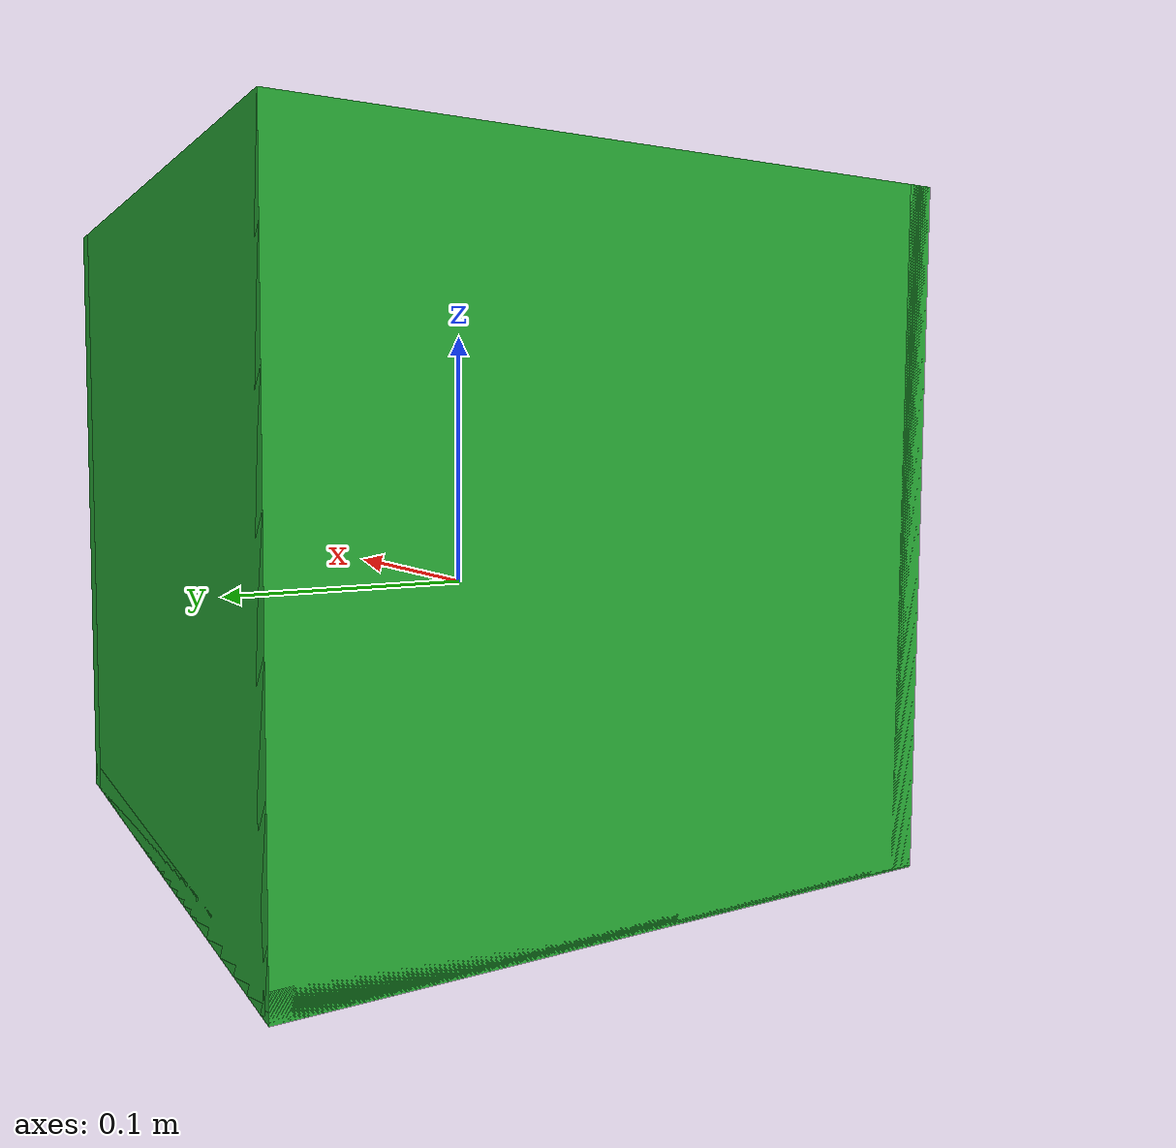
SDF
<?xml version='1.0'?>
<sdf version='1.7'>
  <model name='bin'>
    <link name='link_0'>
      <inertial>
        <mass>0.02</mass>
        <inertia>
          <ixx>0.00046738</ixx>
          <ixy>0</ixy>
          <ixz>0</ixz>
          <iyy>0.00031677</iyy>
          <iyz>0</iyz>
          <izz>0.00077562</izz>
        </inertia>
        <pose>0 0 0 0 -0 0</pose>
      </inertial>
      <pose>0 0 -0.096 0 -0 0</pose>
      <gravity>1</gravity>
      <self_collide>0</self_collide>
      <kinematic>0</kinematic>
      <enable_wind>0</enable_wind>
      <visual name='visual'>
        <pose>0 0 0 0 -0 0</pose>
        <geometry>
          <box>
            <size>0.25 0.25 0.01</size>
          </box>
        </geometry>
        <material>
          <script>
            <uri>file://media/materials/scripts/gazebo.material</uri>
            <name>Gazebo/Green</name>
          </script>
          <shader type='pixel'/>
        </material>
        <transparency>0</transparency>
        <cast_shadows>1</cast_shadows>
      </visual>
      <collision name='collision'>
        <laser_retro>0</laser_retro>
        <max_contacts>10</max_contacts>
        <pose>0 0 0 0 -0 0</pose>
        <geometry>
          <box>
            <size>0.25 0.25 0.01</size>
          </box>
        </geometry>
        <surface>
          <friction>
            <ode>
              <mu>1</mu>
              <mu2>1</mu2>
              <fdir1>0 0 0</fdir1>
              <slip1>0</slip1>
              <slip2>0</slip2>
            </ode>
            <torsional>
              <coefficient>1</coefficient>
              <patch_radius>0</patch_radius>
              <surface_radius>0</surface_radius>
              <use_patch_radius>1</use_patch_radius>
              <ode>
                <slip>0</slip>
              </ode>
            </torsional>
          </friction>
          <bounce>
            <restitution_coefficient>0</restitution_coefficient>
            <threshold>1e+06</threshold>
          </bounce>
          <contact>
            <collide_without_contact>0</collide_without_contact>
            <collide_without_contact_bitmask>1</collide_without_contact_bitmask>
            <collide_bitmask>1</collide_bitmask>
            <ode>
              <soft_cfm>0</soft_cfm>
              <soft_erp>0.2</soft_erp>
              <kp>1e+13</kp>
              <kd>1</kd>
              <max_vel>0.01</max_vel>
              <min_depth>0</min_depth>
            </ode>
            <bullet>
              <split_impulse>1</split_impulse>
              <split_impulse_penetration_threshold>-0.01</split_impulse_penetration_threshold>
              <soft_cfm>0</soft_cfm>
              <soft_erp>0.2</soft_erp>
              <kp>1e+13</kp>
              <kd>1</kd>
            </bullet>
          </contact>
        </surface>
      </collision>
    </link>
    <link name='link_0_clone'>
      <inertial>
        <mass>0.02</mass>
        <inertia>
          <ixx>0.00046738</ixx>
          <ixy>0</ixy>
          <ixz>0</ixz>
          <iyy>0.00031677</iyy>
          <iyz>0</iyz>
          <izz>0.00077562</izz>
        </inertia>
        <pose>0 0 0 0 -0 0</pose>
      </inertial>
      <pose>-0.12 0 0.024 0 -0 0</pose>
      <gravity>1</gravity>
      <self_collide>0</self_collide>
      <kinematic>0</kinematic>
      <enable_wind>0</enable_wind>
      <visual name='visual'>
        <pose>0 0 0 0 -0 0</pose>
        <geometry>
          <box>
            <size>0.01 0.25 0.25</size>
          </box>
        </geometry>
        <material>
          <script>
            <uri>file://media/materials/scripts/gazebo.material</uri>
            <name>Gazebo/Green</name>
          </script>
          <shader type='pixel'/>
        </material>
        <transparency>0</transparency>
        <cast_shadows>1</cast_shadows>
      </visual>
      <collision name='collision'>
        <laser_retro>0</laser_retro>
        <max_contacts>10</max_contacts>
        <pose>0 0 0 0 -0 0</pose>
        <geometry>
          <box>
            <size>0.01 0.25 0.25</size>
          </box>
        </geometry>
        <surface>
          <friction>
            <ode>
              <mu>1</mu>
              <mu2>1</mu2>
              <fdir1>0 0 0</fdir1>
              <slip1>0</slip1>
              <slip2>0</slip2>
            </ode>
            <torsional>
              <coefficient>1</coefficient>
              <patch_radius>0</patch_radius>
              <surface_radius>0</surface_radius>
              <use_patch_radius>1</use_patch_radius>
              <ode>
                <slip>0</slip>
              </ode>
            </torsional>
          </friction>
          <bounce>
            <restitution_coefficient>0</restitution_coefficient>
            <threshold>1e+06</threshold>
          </bounce>
          <contact>
            <collide_without_contact>0</collide_without_contact>
            <collide_without_contact_bitmask>1</collide_without_contact_bitmask>
            <collide_bitmask>1</collide_bitmask>
            <ode>
              <soft_cfm>0</soft_cfm>
              <soft_erp>0.2</soft_erp>
              <kp>1e+13</kp>
              <kd>1</kd>
              <max_vel>0.01</max_vel>
              <min_depth>0</min_depth>
            </ode>
            <bullet>
              <split_impulse>1</split_impulse>
              <split_impulse_penetration_threshold>-0.01</split_impulse_penetration_threshold>
              <soft_cfm>0</soft_cfm>
              <soft_erp>0.2</soft_erp>
              <kp>1e+13</kp>
              <kd>1</kd>
            </bullet>
          </contact>
        </surface>
      </collision>
    </link>
    <link name='link_0_clone_clone'>
      <inertial>
        <mass>0.02</mass>
        <inertia>
          <ixx>0.00046738</ixx>
          <ixy>0</ixy>
          <ixz>0</ixz>
          <iyy>0.00031677</iyy>
          <iyz>0</iyz>
          <izz>0.00077562</izz>
        </inertia>
        <pose>0 0 0 0 -0 0</pose>
      </inertial>
      <pose>0.12 0 0.024 0 -0 0</pose>
      <gravity>1</gravity>
      <self_collide>0</self_collide>
      <kinematic>0</kinematic>
      <enable_wind>0</enable_wind>
      <visual name='visual'>
        <pose>0 0 0 0 -0 0</pose>
        <geometry>
          <box>
            <size>0.01 0.25 0.25</size>
          </box>
        </geometry>
        <material>
          <script>
            <uri>file://media/materials/scripts/gazebo.material</uri>
            <name>Gazebo/Green</name>
          </script>
          <shader type='pixel'/>
        </material>
        <transparency>0</transparency>
        <cast_shadows>1</cast_shadows>
      </visual>
      <collision name='collision'>
        <laser_retro>0</laser_retro>
        <max_contacts>10</max_contacts>
        <pose>0 0 0 0 -0 0</pose>
        <geometry>
          <box>
            <size>0.01 0.25 0.25</size>
          </box>
        </geometry>
        <surface>
          <friction>
            <ode>
              <mu>1</mu>
              <mu2>1</mu2>
              <fdir1>0 0 0</fdir1>
              <slip1>0</slip1>
              <slip2>0</slip2>
            </ode>
            <torsional>
              <coefficient>1</coefficient>
              <patch_radius>0</patch_radius>
              <surface_radius>0</surface_radius>
              <use_patch_radius>1</use_patch_radius>
              <ode>
                <slip>0</slip>
              </ode>
            </torsional>
          </friction>
          <bounce>
            <restitution_coefficient>0</restitution_coefficient>
            <threshold>1e+06</threshold>
          </bounce>
          <contact>
            <collide_without_contact>0</collide_without_contact>
            <collide_without_contact_bitmask>1</collide_without_contact_bitmask>
            <collide_bitmask>1</collide_bitmask>
            <ode>
              <soft_cfm>0</soft_cfm>
              <soft_erp>0.2</soft_erp>
              <kp>1e+13</kp>
              <kd>1</kd>
              <max_vel>0.01</max_vel>
              <min_depth>0</min_depth>
            </ode>
            <bullet>
              <split_impulse>1</split_impulse>
              <split_impulse_penetration_threshold>-0.01</split_impulse_penetration_threshold>
              <soft_cfm>0</soft_cfm>
              <soft_erp>0.2</soft_erp>
              <kp>1e+13</kp>
              <kd>1</kd>
            </bullet>
          </contact>
        </surface>
      </collision>
    </link>
    <link name='link_0_clone_clone_0'>
      <inertial>
        <mass>0.02</mass>
        <inertia>
          <ixx>0.00046738</ixx>
          <ixy>0</ixy>
          <ixz>0</ixz>
          <iyy>0.00031677</iyy>
          <iyz>0</iyz>
          <izz>0.00077562</izz>
        </inertia>
        <pose>0 0 0 0 -0 0</pose>
      </inertial>
      <pose>0 0.12 0.024 0 -0 0</pose>
      <gravity>1</gravity>
      <self_collide>0</self_collide>
      <kinematic>0</kinematic>
      <enable_wind>0</enable_wind>
      <visual name='visual'>
        <pose>0 0 0 0 -0 0</pose>
        <geometry>
          <box>
            <size>0.25 0.01 0.25</size>
          </box>
        </geometry>
        <material>
          <script>
            <uri>file://media/materials/scripts/gazebo.material</uri>
            <name>Gazebo/Green</name>
          </script>
          <shader type='pixel'/>
        </material>
        <transparency>0</transparency>
        <cast_shadows>1</cast_shadows>
      </visual>
      <collision name='collision'>
        <laser_retro>0</laser_retro>
        <max_contacts>10</max_contacts>
        <pose>0 0 0 0 -0 0</pose>
        <geometry>
          <box>
            <size>0.25 0.01 0.25</size>
          </box>
        </geometry>
        <surface>
          <friction>
            <ode>
              <mu>1</mu>
              <mu2>1</mu2>
              <fdir1>0 0 0</fdir1>
              <slip1>0</slip1>
              <slip2>0</slip2>
            </ode>
            <torsional>
              <coefficient>1</coefficient>
              <patch_radius>0</patch_radius>
              <surface_radius>0</surface_radius>
              <use_patch_radius>1</use_patch_radius>
              <ode>
                <slip>0</slip>
              </ode>
            </torsional>
          </friction>
          <bounce>
            <restitution_coefficient>0</restitution_coefficient>
            <threshold>1e+06</threshold>
          </bounce>
          <contact>
            <collide_without_contact>0</collide_without_contact>
            <collide_without_contact_bitmask>1</collide_without_contact_bitmask>
            <collide_bitmask>1</collide_bitmask>
            <ode>
              <soft_cfm>0</soft_cfm>
              <soft_erp>0.2</soft_erp>
              <kp>1e+13</kp>
              <kd>1</kd>
              <max_vel>0.01</max_vel>
              <min_depth>0</min_depth>
            </ode>
            <bullet>
              <split_impulse>1</split_impulse>
              <split_impulse_penetration_threshold>-0.01</split_impulse_penetration_threshold>
              <soft_cfm>0</soft_cfm>
              <soft_erp>0.2</soft_erp>
              <kp>1e+13</kp>
              <kd>1</kd>
            </bullet>
          </contact>
        </surface>
      </collision>
    </link>
    <link name='link_0_clone_clone_0_clone'>
      <inertial>
        <mass>0.02</mass>
        <inertia>
          <ixx>0.00046738</ixx>
          <ixy>0</ixy>
          <ixz>0</ixz>
          <iyy>0.00031677</iyy>
          <iyz>0</iyz>
          <izz>0.00077562</izz>
        </inertia>
        <pose>0 0 0 0 -0 0</pose>
      </inertial>
      <pose>0 -0.12 0.024 0 -0 0</pose>
      <gravity>1</gravity>
      <self_collide>0</self_collide>
      <kinematic>0</kinematic>
      <enable_wind>0</enable_wind>
      <visual name='visual'>
        <pose>0 0 0 0 -0 0</pose>
        <geometry>
          <box>
            <size>0.25 0.01 0.25</size>
          </box>
        </geometry>
        <material>
          <script>
            <uri>file://media/materials/scripts/gazebo.material</uri>
            <name>Gazebo/Green</name>
          </script>
          <shader type='pixel'/>
        </material>
        <transparency>0</transparency>
        <cast_shadows>1</cast_shadows>
      </visual>
      <collision name='collision'>
        <laser_retro>0</laser_retro>
        <max_contacts>10</max_contacts>
        <pose>0 0 0 0 -0 0</pose>
        <geometry>
          <box>
            <size>0.25 0.01 0.25</size>
          </box>
        </geometry>
        <surface>
          <friction>
            <ode>
              <mu>1</mu>
              <mu2>1</mu2>
              <fdir1>0 0 0</fdir1>
              <slip1>0</slip1>
              <slip2>0</slip2>
            </ode>
            <torsional>
              <coefficient>1</coefficient>
              <patch_radius>0</patch_radius>
              <surface_radius>0</surface_radius>
              <use_patch_radius>1</use_patch_radius>
              <ode>
                <slip>0</slip>
              </ode>
            </torsional>
          </friction>
          <bounce>
            <restitution_coefficient>0</restitution_coefficient>
            <threshold>1e+06</threshold>
          </bounce>
          <contact>
            <collide_without_contact>0</collide_without_contact>
            <collide_without_contact_bitmask>1</collide_without_contact_bitmask>
            <collide_bitmask>1</collide_bitmask>
            <ode>
              <soft_cfm>0</soft_cfm>
              <soft_erp>0.2</soft_erp>
              <kp>1e+13</kp>
              <kd>1</kd>
              <max_vel>0.01</max_vel>
              <min_depth>0</min_depth>
            </ode>
            <bullet>
              <split_impulse>1</split_impulse>
              <split_impulse_penetration_threshold>-0.01</split_impulse_penetration_threshold>
              <soft_cfm>0</soft_cfm>
              <soft_erp>0.2</soft_erp>
              <kp>1e+13</kp>
              <kd>1</kd>
            </bullet>
          </contact>
        </surface>
      </collision>
    </link>
    <joint name='link_0_JOINT_2' type='fixed'>
      <parent>link_0</parent>
      <child>link_0_clone_clone_0</child>
      <pose>0 0 0 0 -0 0</pose>
      <physics>
        <ode>
          <limit>
            <cfm>0</cfm>
            <erp>0.2</erp>
          </limit>
          <suspension>
            <cfm>0</cfm>
            <erp>0.2</erp>
          </suspension>
        </ode>
      </physics>
    </joint>
    <joint name='link_0_JOINT_3' type='fixed'>
      <parent>link_0</parent>
      <child>link_0_clone_clone</child>
      <pose>0 0 0 0 -0 0</pose>
      <physics>
        <ode>
          <limit>
            <cfm>0</cfm>
            <erp>0.2</erp>
          </limit>
          <suspension>
            <cfm>0</cfm>
            <erp>0.2</erp>
          </suspension>
        </ode>
      </physics>
    </joint>
    <joint name='link_0_JOINT_4' type='fixed'>
      <parent>link_0</parent>
      <child>link_0_clone_clone_0_clone</child>
      <pose>0 0 0 0 -0 0</pose>
      <physics>
        <ode>
          <limit>
            <cfm>0</cfm>
            <erp>0.2</erp>
          </limit>
          <suspension>
            <cfm>0</cfm>
            <erp>0.2</erp>
          </suspension>
        </ode>
      </physics>
    </joint>
    <joint name='link_0_JOINT_5' type='fixed'>
      <parent>link_0</parent>
      <child>link_0_clone</child>
      <pose>0 0 0 0 -0 0</pose>
      <physics>
        <ode>
          <limit>
            <cfm>0</cfm>
            <erp>0.2</erp>
          </limit>
          <suspension>
            <cfm>0</cfm>
            <erp>0.2</erp>
          </suspension>
        </ode>
      </physics>
    </joint>
    <joint name='link_0_clone_JOINT_6' type='fixed'>
      <parent>link_0_clone</parent>
      <child>link_0_clone_clone_0</child>
      <pose>0 0 0 0 -0 0</pose>
      <physics>
        <ode>
          <limit>
            <cfm>0</cfm>
            <erp>0.2</erp>
          </limit>
          <suspension>
            <cfm>0</cfm>
            <erp>0.2</erp>
          </suspension>
        </ode>
      </physics>
    </joint>
    <joint name='link_0_clone_clone_0_JOINT_7' type='fixed'>
      <parent>link_0_clone_clone_0</parent>
      <child>link_0_clone_clone</child>
      <pose>0 0 0 0 -0 0</pose>
      <physics>
        <ode>
          <limit>
            <cfm>0</cfm>
            <erp>0.2</erp>
          </limit>
          <suspension>
            <cfm>0</cfm>
            <erp>0.2</erp>
          </suspension>
        </ode>
      </physics>
    </joint>
    <joint name='link_0_clone_clone_0_clone_JOINT_9' type='fixed'>
      <parent>link_0_clone_clone_0_clone</parent>
      <child>link_0_clone</child>
      <pose>0 0 0 0 -0 0</pose>
      <physics>
        <ode>
          <limit>
            <cfm>0</cfm>
            <erp>0.2</erp>
          </limit>
          <suspension>
            <cfm>0</cfm>
            <erp>0.2</erp>
          </suspension>
        </ode>
      </physics>
    </joint>
    <joint name='link_0_clone_clone_JOINT_8' type='fixed'>
      <parent>link_0_clone_clone</parent>
      <child>link_0_clone_clone_0_clone</child>
      <pose>0 0 0 0 -0 0</pose>
      <physics>
        <ode>
          <limit>
            <cfm>0</cfm>
            <erp>0.2</erp>
          </limit>
          <suspension>
            <cfm>0</cfm>
            <erp>0.2</erp>
          </suspension>
        </ode>
      </physics>
    </joint>
    <static>1</static>
    <allow_auto_disable>1</allow_auto_disable>
  </model>
</sdf>
